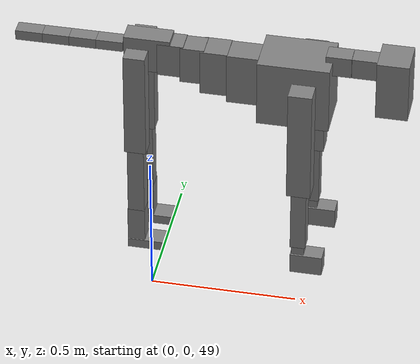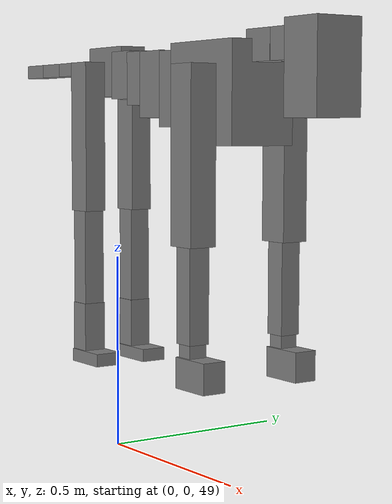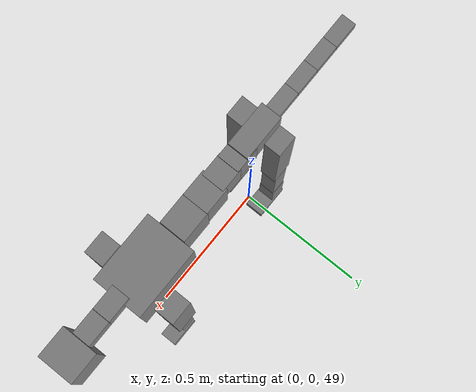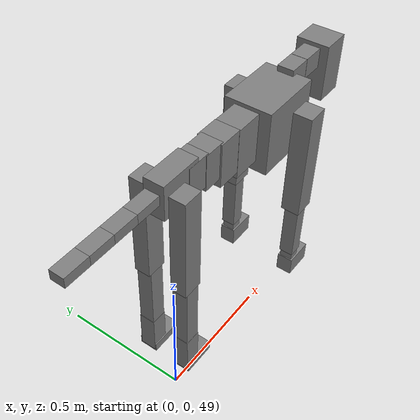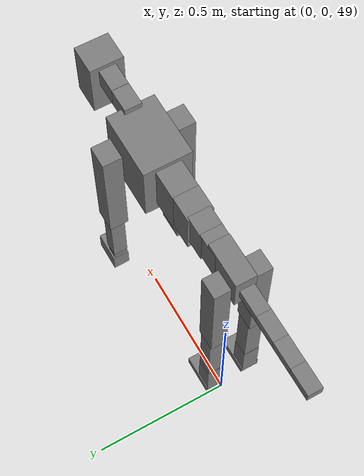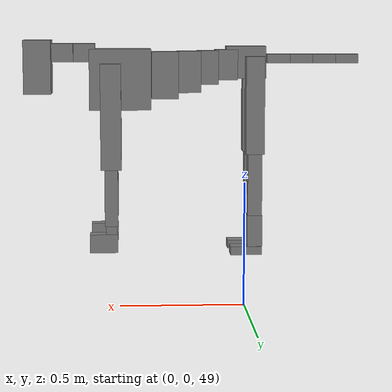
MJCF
<mujoco model="dog">

    <default>
        <joint armature="0.02" stiffness="1" damping="0.2" limited="true"/>
        <geom condim="3" friction="1 0.05 0.05" margin="0.01"/>
        <motor ctrllimited="true" ctrlrange="-1.0 1.0" forcelimited="true" gear="50"/>
    </default>

    <compiler inertiafromgeom="true" angle="radian"/>

    <option timestep="0.016" iterations="50" tolerance="1e-10" solver="Newton" jacobian="dense" cone="pyramidal"/>

    <size nconmax="20000" njmax="60000" nstack="5000000"/>
    <visual>
        <map force="0.1" zfar="30"/>
        <rgba haze="0.15 0.25 0.35 1"/>
        <quality shadowsize="2048"/>
        <global offwidth="800" offheight="800"/>
    </visual>

    <asset>
        <texture type="skybox" builtin="gradient" rgb1="0.3 0.5 0.7" rgb2="0 0 0" width="512" height="512"/>
        <texture name="texplane" type="2d" builtin="checker" rgb1=".2 .3 .4" rgb2=".1 0.15 0.2" width="512" height="512"
                 mark="cross" markrgb=".8 .8 .8"/>
        <texture name="texgeom" type="cube" builtin="flat" mark="cross" width="127" height="1278" rgb1="0.8 0.6 0.4"
                 rgb2="0.8 0.6 0.4" markrgb="1 1 1" random="0.01"/>

        <material name="matplane" reflectance="0.3" texture="texplane" texrepeat="1 1" texuniform="true"/>
        <material name="matgeom" texture="texgeom" texuniform="true" rgba="0.8 0.6 .4 1"/>
    </asset>

    <worldbody>
        <geom name="floor" pos="0 0 0" size="0 0 .25" type="plane" material="matplane" condim="3"/>

        <light directional="false" diffuse=".2 .2 .2" specular="0 0 0" pos="0 0 5" dir="0 0 -1" castshadow="false"/>
        <light mode="targetbodycom" target="torso" directional="false" diffuse=".8 .8 .8" specular="0.3 0.3 0.3"
               pos="0 0 4.0" dir="0 0 -1"/>

        <body name="root" pos="0 0 50">
            <freejoint name="root_1"/>
            <geom type="box" pos="0 0 -0.02" size="0.0774  0.0358  0.063" density="2030"/>

            <body name="spine1" pos="0.054 0 0">
                <joint name="spine1_y" axis="0 1 0" range="0 0.7" limited="true"/>
                <geom type="box" pos="0.02375 0 -0.03" size="0.04375  0.0375  0.05985" density="2030"/>

                <body name="spine2" pos="0.0612 0 0">
                    <joint name="spine2_y" axis="0 1 0" range="-0.15 0.15" limited="true"/>
                    <geom type="box" pos="0.03555  0  -0.04" size="0.04055  0.039  0.06615" density="2030"/>

                    <body name="spine3" pos="0.0730 0 0">
                        <joint name="spine3_y" axis="0 1 0" range="-0.15 0.15" limited="true"/>
                        <geom type="box" pos="0.03555  0  -0.057" size="0.04555  0.0445  0.081" density="2030"/>

                        <body name="spine4" pos="0.0780 0 0">
                            <joint name="spine4_y" axis="0 1 0" range="-0.15 0.15" limited="true"/>
                            <geom type="box" pos="0.05265  0  -0.07" size="0.05265  0.045  0.09135" density="2030"/>

                            <body name="torso" pos="0.1082 0 0">
                                <joint name="torso_y" axis="0 1 0" range="-0.15 0.15" limited="true"/>
                                <geom type="box" pos="0.11925  0  -0.085" size="0.11925  0.085  0.11745"
                                      density="2030"/>

                                <body name="neck1" pos="0.2160  0   0.0180">
                                    <joint name="neck1_y" axis="0 1 0" range="-1.2  -1" limited="true"/>
                                    <geom type="box" pos="0.0423  0  0" size="0.0423  0.03  0.036" density="2325"/>

                                    <body name="neck2" pos="0.0853  0  0">
                                        <joint name="neck2_y" axis="0 1 0" range="0.1  0" limited="true"/>
                                        <geom type="box" pos="0.0423  0  0" size="0.0423  0.03  0.036" density="2325"/>

                                        <body name="head" pos="0.0853  0  0">
                                            <joint name="head_y" axis="0 1 0" range="-0.3  -0.2" limited="true"/>
                                            <geom type="box" pos="0.0531  0  -0.055" size="0.0531  0.06  0.1044"
                                                  density="4030"/>

                                        </body>
                                    </body>
                                </body>

                                <body name="front_shoulder" pos="0.156  0   -0.0480">
                                    <joint name="front_shoulder_y" axis="0 1 0" range="-1 1.5" limited="true"/>
                                    <geom type="box" pos="0 0.13 -0.1759" size="0.0396  0.0338  0.2026" density="1158"/>
                                    <geom type="box" pos="0 -0.13 -0.1759" size="0.0396  0.0338  0.2026"
                                          density="1158"/>

                                    <body name="front_elbow" pos="0  0  -0.3518">
                                        <joint name="front_elbow_y" axis="0 1 0" range="-2 0" limited="true"/>
                                        <geom type="box" pos="0 0.13 -0.1231" size="0.0255  0.0260  0.1231"
                                              density="1081"/>
                                        <geom type="box" pos="0 -0.13 -0.1231" size="0.0255  0.0260  0.1231"
                                              density="1081"/>

                                        <body name="front_wrist" pos="0  0  -0.2462">
                                            <joint name="front_wrist_y" axis="0 1 0" range="-0.2 0" limited="true"/>
                                            <geom type="box" pos="0 0.13 -0.0228" size="0.0206  0.0229  0.0359"
                                                  density="1664"/>
                                            <geom type="box" pos="0 -0.13 -0.0228" size="0.0206  0.0229  0.0359"
                                                  density="1664"/>

                                            <body name="front_finger_end" pos="0  0  -0.0455">
                                                <joint name="front_finger_y" axis="0 1 0" range="-0.4 1"
                                                       limited="true"/>
                                                <geom type="box" pos="0.0293  0.13  -0.0207"
                                                      size="0.0538  0.0293  0.0357" density="1515"/>
                                                <geom type="box" pos="0.0293  -0.13  -0.0207"
                                                      size="0.0538  0.0293  0.0357" density="1515"/>

                                            </body>

                                        </body>
                                    </body>
                                </body>

                            </body>
                        </body>
                    </body>
                </body>
            </body>

            <body name="back_hip" pos="-0.03 0 -0.018">
                <joint name="back_hip_y" axis="0 1 0" range="-1.5 0.3" limited="true"/>
                <geom type="box" pos="0 0.07 -0.1680" size="0.0363  0.0284  0.1908" density="1154"/>
                <geom type="box" pos="0 -0.07 -0.1680" size="0.0363  0.0284  0.1908" density="1154"/>

                <body name="back_knee" pos="0  0  -0.3360">
                    <joint name="back_knee_y" axis="0 1 0" range="0 2.8" limited="true"/>
                    <geom type="box" pos="0 0.07 -0.1371" size="0.0278  0.0274  0.1526" density="1227"/>
                    <geom type="box" pos="0 -0.07 -0.1371" size="0.0278  0.0274  0.1526" density="1227"/>

                    <body name="back_ankle" pos="0  0  -0.2742">
                        <joint name="back_ankle_y" axis="0 1 0" range="-2.2 0" limited="true"/>
                        <geom type="box" pos="0 0.07 -0.0634" size="0.0291  0.0291  0.0746" density="1284"/>
                        <geom type="box" pos="0 -0.07 -0.0634" size="0.0291  0.0291  0.0746" density="1284"/>

                        <body name="back_toe_end" pos="0  0  -0.1268">
                            <joint name="back_toe_y" axis="0 1 0" range="-0.4 1" limited="true"/>
                            <geom type="box" pos="0.0334  0.07  -0.0014" size="0.0613  0.0334  0.0164" density="1515"/>
                            <geom type="box" pos="0.0334  -0.07  -0.0014" size="0.0613  0.0334  0.0164" density="1515"/>

                        </body>
                    </body>
                </body>
            </body>

            <body name="tail1" pos="-0.074 0 -0.006">
                <joint name="tail1_y" axis="0 1 0" range="-0.2 0.2" limited="true"/>
                <geom type="box" pos="-0.0536  0  0" size="0.045  0.025  0.0175" density="1587"/>

                <body name="tail2" pos="-0.09 0 0">
                    <joint name="tail2_y" axis="0 1 0" range="-0.2 0.2" limited="true"/>
                    <geom type="box" pos="-0.0536  0  0" size="0.045  0.025  0.0175" density="1587"/>

                    <body name="tail3" pos="-0.09 0 0">
                        <joint name="tail3_y" axis="0 1 0" range="-0.2 0.2" limited="true"/>
                        <geom type="box" pos="-0.0536  0  0" size="0.045  0.025  0.0175" density="1587"/>

                        <body name="tail4" pos="-0.09 0 0">
                            <joint name="tail4_y" axis="0 1 0" range="-0.2 0.2" limited="true"/>
                            <geom type="box" pos="-0.0536  0  0" size="0.045  0.025  0.0175" density="1587"/>

                        </body>
                    </body>
                </body>
            </body>
        </body>
    </worldbody>

    <actuator>
        <motor joint="spine1_y" forcerange="-150 150     "/>
        <motor joint="spine2_y" forcerange="-150 150     "/>
        <motor joint="spine3_y" forcerange="-150 150     "/>
        <motor joint="spine4_y" forcerange="-150 150     "/>
        <motor joint="torso_y" forcerange="-150 150     "/>
        <motor joint="neck1_y" forcerange="-100 100       "/>
        <motor joint="neck2_y" forcerange="-100 100       "/>
        <motor joint="head_y" forcerange="-150 150       "/>
        <motor joint="front_shoulder_y" forcerange="-175.28 150.30"/>
        <motor joint="front_elbow_y" forcerange="-108.24 180.98"/>
        <motor joint="front_wrist_y" forcerange="-66.40 116.69"/>
        <motor joint="front_finger_y" forcerange="-94.89 21.62"/>
        <motor joint="back_hip_y" forcerange="-261.29 317.94"/>
        <motor joint="back_knee_y" forcerange="-201.44 396.89"/>
        <motor joint="back_angle_y" forcerange="-221.54 144.22"/>
        <motor joint="back_toe_y" forcerange="-63.72 123.63"/>
        <motor joint="tail1_y" forcerange="-50 50     "/>
        <motor joint="tail2_y" forcerange="-50 50     "/>
        <motor joint="tail3_y" forcerange="-50 50     "/>
        <motor joint="tail4_y" forcerange="-50 50     "/>
    </actuator>
</mujoco>
